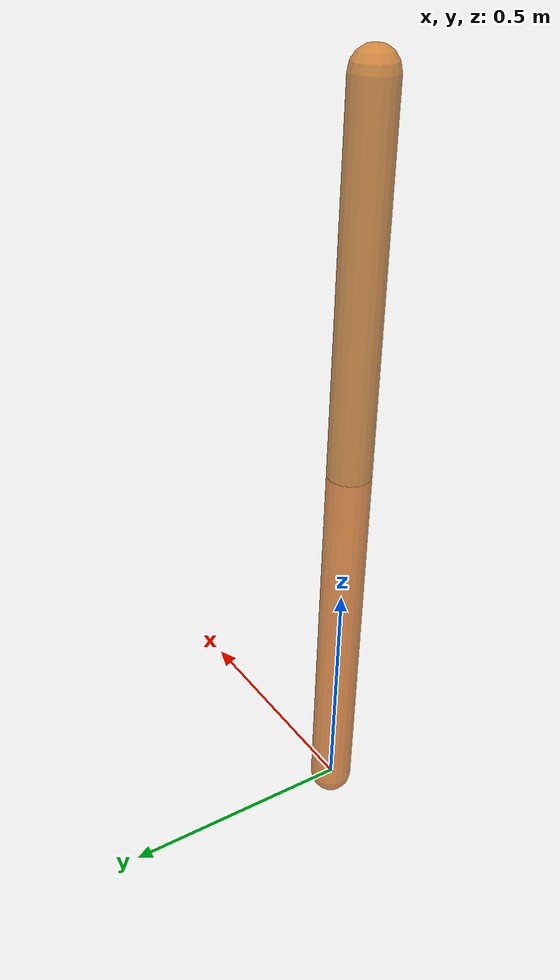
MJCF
<mujoco model="HPC_custom">
  <compiler angle="radian" coordinate="local" inertiafromgeom="false" />
  <default>
    <joint damping="0.0" />
    <geom contype="0" friction="0.0 0.0 0.0" />
  </default>
  <option gravity="0 0 -9.81" integrator="RK4" timestep="0.0083333333" />
  <size nstack="3000" nuser_actuator="10" nuserdata="100" />
  <worldbody>
    <geom name="floor" pos="0 0 -3" rgba="1 1 1 1" size="40 40 40" type="plane" />
    <body name="leg" pos="0 0 0">
      <joint axis="0 1 0" limited="true" name="hinge" pos="0 0 0" range="-0.5 0.5" type="hinge" />
      <geom fromto="0 0 0 0 0 0.7970" name="cpole" rgba="0.9 0.4 0.0 0.7" size="0.045" type="capsule" />
      <inertial diaginertia="0.878121 0.878121 0.001" mass="17.2955" pos="0 0 0.5084" />
      <body name="body" pos="0 0 0.7970">
        <joint axis="0 1 0" limited="true" name="hinge2" pos="0 0 0" range="-0.5 0.5" type="hinge" />
        <geom fromto="0 0 0 0 0 0.7520" name="cpole2" rgba="0.8 0.4 0.0 0.7" size="0.045" type="capsule" />
        <inertial diaginertia="1.047289 1.047289 0.001" mass="34.5085" pos="0 0 0.2814" />
      </body>
    </body>
  </worldbody>
  <actuator>
    <motor ctrllimited="true" ctrlrange="-1.0 1.0" gear="300" joint="hinge" />
    <motor ctrllimited="true" ctrlrange="-1.0 1.0" gear="300" joint="hinge2" />
  </actuator>
</mujoco>
